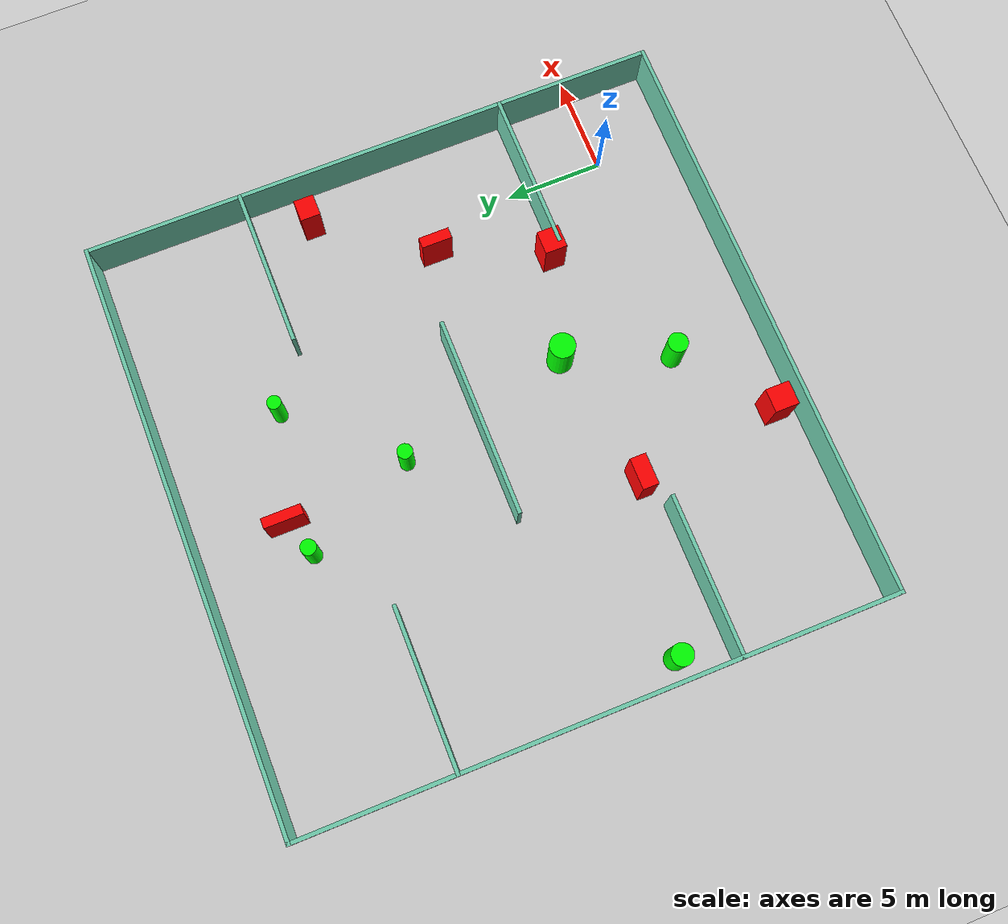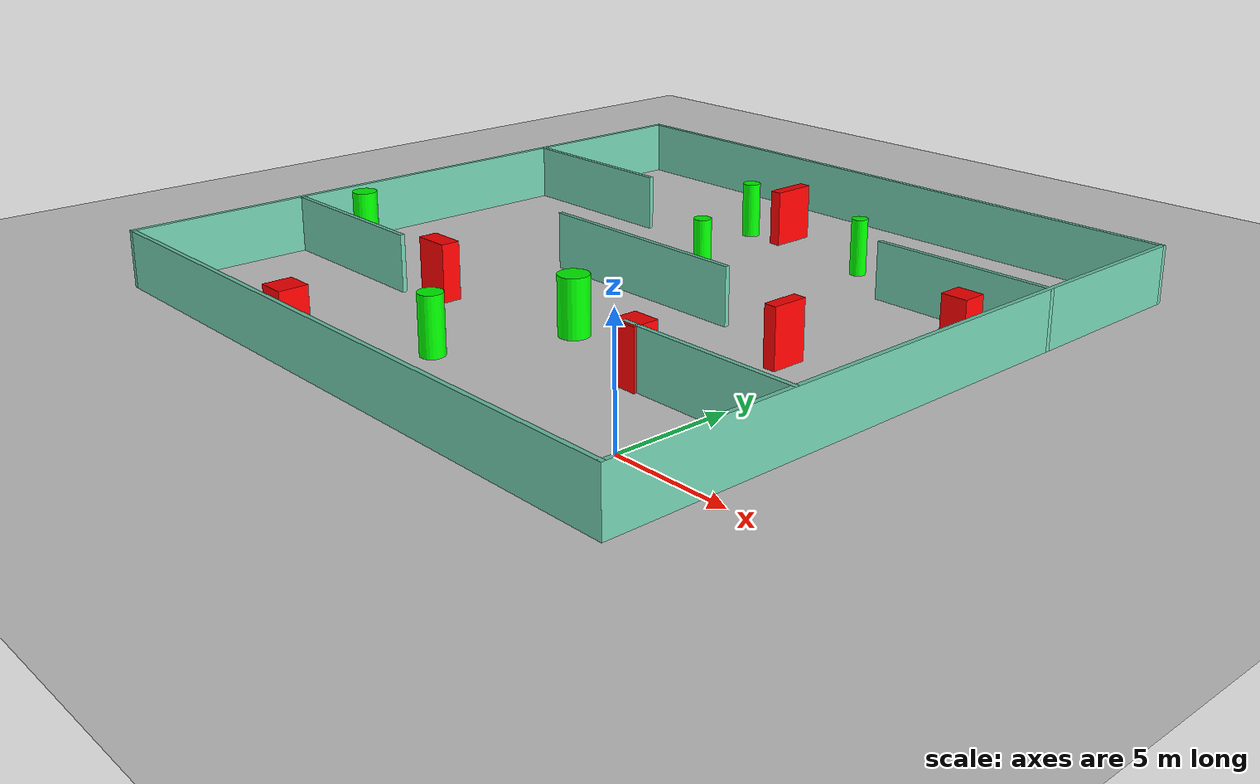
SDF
<sdf version="1.7">
 <world name="default">
  <light name="sun" type="directional">
   <pose>0 0 10 0 -0 0</pose>
   <diffuse>0.8 0.8 0.8 1</diffuse>
   <specular>0.2 0.2 0.2 1</specular>
   <attenuation>
    <range>1000</range>
    <constant>0.9</constant>
    <linear>0.01</linear>
    <quadratic>0.001</quadratic>
   </attenuation>
   <direction>-0.5 0.1 -0.9</direction>
   <spot><inner_angle>0</inner_angle><outer_angle>0</outer_angle><falloff>0</falloff></spot>
  </light>
  <model name="ground_plane">
   <static>1</static>
   <link name="link">
    <collision name="collision">
     <geometry><plane><normal>0 0 1</normal><size>100 100</size></plane></geometry>
     <surface>
      <contact><collide_bitmask>65535</collide_bitmask></contact>
      <friction><ode><mu>100</mu><mu2>50</mu2></ode></friction>
     </surface>
    </collision>
    <visual name="visual">
     <cast_shadows>0</cast_shadows>
     <geometry><plane><normal>0 0 1</normal><size>100 100</size></plane></geometry>
     <material>
      <script><uri>file://media/materials/scripts/gazebo.material</uri><name>Gazebo/Grey</name></script>
     </material>
    </visual>
   </link>
  </model>
  <gravity>0 0 -9.8</gravity>
  <magnetic_field>6e-06 2.3e-05 -4.2e-05</magnetic_field>
  <atmosphere type="adiabatic"/>
  <physics type="ode">
   <max_step_size>0.001</max_step_size>
   <real_time_factor>1</real_time_factor>
   <real_time_update_rate>1000</real_time_update_rate>
  </physics>
  <scene><ambient>0.4 0.4 0.4 1</ambient><background>0.7 0.7 0.7 1</background><shadows>1</shadows></scene>
  <spherical_coordinates>
   <surface_model>EARTH_WGS84</surface_model>
   <latitude_deg>0</latitude_deg>
   <longitude_deg>0</longitude_deg>
   <elevation>0</elevation>
   <heading_deg>0</heading_deg>
  </spherical_coordinates>
  <model name="my_base_walls">
   <link name="Wall_10">
    <collision name="Wall_10_Collision">
     <geometry><box><size>8.2 0.2 2.5</size></box></geometry>
     <pose>0 0 1.25 0 -0 0</pose>
    </collision>
    <visual name="Wall_10_Visual">
     <pose>0 0 1.25 0 -0 0</pose>
     <geometry><box><size>8.2 0.2 2.5</size></box></geometry>
     <material>
      <script><uri>file://media/materials/scripts/gazebo.material</uri><name>Gazebo/Grey</name></script>
      <ambient>0.435294 0.796078 0.67451 1</ambient>
     </material>
     <meta><layer>0</layer></meta>
    </visual>
    <pose>-11 -7 0 0 -0 0</pose>
   </link>
   <link name="Wall_12">
    <collision name="Wall_12_Collision">
     <geometry><box><size>8.2 0.2 2.5</size></box></geometry>
     <pose>0 0 1.25 0 -0 0</pose>
    </collision>
    <visual name="Wall_12_Visual">
     <pose>0 0 1.25 0 -0 0</pose>
     <geometry><box><size>8.2 0.2 2.5</size></box></geometry>
     <material>
      <script><uri>file://media/materials/scripts/gazebo.material</uri><name>Gazebo/Grey</name></script>
      <ambient>0.435294 0.796078 0.67451 1</ambient>
     </material>
     <meta><layer>0</layer></meta>
    </visual>
    <pose>-11 7 0 0 -0 0</pose>
   </link>
   <link name="Wall_14">
    <collision name="Wall_14_Collision">
     <geometry><box><size>8.2 0.2 2.5</size></box></geometry>
     <pose>0 0 1.25 0 -0 0</pose>
    </collision>
    <visual name="Wall_14_Visual">
     <pose>0 0 1.25 0 -0 0</pose>
     <geometry><box><size>8.2 0.2 2.5</size></box></geometry>
     <material>
      <script><uri>file://media/materials/scripts/gazebo.material</uri><name>Gazebo/Grey</name></script>
      <ambient>0.435294 0.796078 0.67451 1</ambient>
     </material>
     <meta><layer>0</layer></meta>
    </visual>
    <pose>11 7 0 0 -0 3.14159</pose>
   </link>
   <link name="Wall_16">
    <collision name="Wall_16_Collision">
     <geometry><box><size>10.2 0.2 2.5</size></box></geometry>
     <pose>0 0 1.25 0 -0 0</pose>
    </collision>
    <visual name="Wall_16_Visual">
     <pose>0 0 1.25 0 -0 0</pose>
     <geometry><box><size>10.2 0.2 2.5</size></box></geometry>
     <material>
      <script><uri>file://media/materials/scripts/gazebo.material</uri><name>Gazebo/Grey</name></script>
      <ambient>0.435294 0.796078 0.67451 1</ambient>
     </material>
     <meta><layer>0</layer></meta>
    </visual>
    <pose>0 0 0 0 -0 3.14159</pose>
   </link>
   <link name="Wall_2">
    <collision name="Wall_2_Collision">
     <geometry><box><size>30.2 0.2 2.5</size></box></geometry>
     <pose>0 0 1.25 0 -0 0</pose>
    </collision>
    <visual name="Wall_2_Visual">
     <pose>0 0 1.25 0 -0 0</pose>
     <geometry><box><size>30.2 0.2 2.5</size></box></geometry>
     <material>
      <script><uri>file://media/materials/scripts/gazebo.material</uri><name>Gazebo/Grey</name></script>
      <ambient>0.435294 0.796078 0.67451 1</ambient>
     </material>
     <meta><layer>0</layer></meta>
    </visual>
    <pose>0 -15 0 0 -0 3.14159</pose>
   </link>
   <link name="Wall_3">
    <collision name="Wall_3_Collision">
     <geometry><box><size>30.2 0.2 2.5</size></box></geometry>
     <pose>0 0 1.25 0 -0 0</pose>
    </collision>
    <visual name="Wall_3_Visual">
     <pose>0 0 1.25 0 -0 0</pose>
     <geometry><box><size>30.2 0.2 2.5</size></box></geometry>
     <material>
      <script><uri>file://media/materials/scripts/gazebo.material</uri><name>Gazebo/Grey</name></script>
      <ambient>0.435294 0.796078 0.67451 1</ambient>
     </material>
     <meta><layer>0</layer></meta>
    </visual>
    <pose>-15 0 0 0 -0 1.5708</pose>
   </link>
   <link name="Wall_4">
    <collision name="Wall_4_Collision">
     <geometry><box><size>30.2 0.2 2.5</size></box></geometry>
     <pose>0 0 1.25 0 -0 0</pose>
    </collision>
    <visual name="Wall_4_Visual">
     <pose>0 0 1.25 0 -0 0</pose>
     <geometry><box><size>30.2 0.2 2.5</size></box></geometry>
     <material>
      <script><uri>file://media/materials/scripts/gazebo.material</uri><name>Gazebo/Grey</name></script>
      <ambient>0.435294 0.796078 0.67451 1</ambient>
     </material>
     <meta><layer>0</layer></meta>
    </visual>
    <pose>0 15 0 0 -0 0</pose>
   </link>
   <link name="Wall_6">
    <collision name="Wall_6_Collision">
     <geometry><box><size>30.2 0.2 2.5</size></box></geometry>
     <pose>0 0 1.25 0 -0 0</pose>
    </collision>
    <visual name="Wall_6_Visual">
     <pose>0 0 1.25 0 -0 0</pose>
     <geometry><box><size>30.2 0.2 2.5</size></box></geometry>
     <material>
      <script><uri>file://media/materials/scripts/gazebo.material</uri><name>Gazebo/Grey</name></script>
      <ambient>0.435294 0.796078 0.67451 1</ambient>
     </material>
     <meta><layer>0</layer></meta>
    </visual>
    <pose>15 0 0 0 -0 1.5708</pose>
   </link>
   <link name="Wall_8">
    <collision name="Wall_8_Collision">
     <geometry><box><size>8.2 0.2 2.5</size></box></geometry>
     <pose>0 0 1.25 0 -0 0</pose>
    </collision>
    <visual name="Wall_8_Visual">
     <pose>0 0 1.25 0 -0 0</pose>
     <geometry><box><size>8.2 0.2 2.5</size></box></geometry>
     <material>
      <script><uri>file://media/materials/scripts/gazebo.material</uri><name>Gazebo/Grey</name></script>
      <ambient>0.435294 0.796078 0.67451 1</ambient>
     </material>
     <meta><layer>0</layer></meta>
    </visual>
    <pose>11 -7 0 0 -0 3.14159</pose>
   </link>
   <static>1</static>
   <pose>-11 11 0 0 -0 0</pose>
  </model>
  <model name="cylinder1">
   <static>1</static>
   <link name="link">
    <inertial>
     <mass>1</mass>
     <inertia><ixx>0.5</ixx><ixy>0</ixy><ixz>0</ixz><iyy>0.5</iyy><iyz>0</iyz><izz>1</izz></inertia>
    </inertial>
    <collision name="collision">
     <geometry><cylinder><radius>0.6551876863949972</radius><length>2.5</length></cylinder></geometry>
    </collision>
    <visual name="visual">
     <geometry><cylinder><radius>0.6551876863949972</radius><length>2.5</length></cylinder></geometry>
     <material>
      <ambient>0 1 0 1</ambient>
      <diffuse>0 1 0 1</diffuse>
      <specular>0.1 0.1 0.1 1</specular>
      <emissive>0 0 0 0</emissive>
     </material>
    </visual>
   </link>
   <pose>-9.197490238429921 5.9769123065697904 1.25 0 0 0</pose>
  </model>
  <model name="cylinder2">
   <static>1</static>
   <link name="link">
    <inertial>
     <mass>1</mass>
     <inertia><ixx>0.5</ixx><ixy>0</ixy><ixz>0</ixz><iyy>0.5</iyy><iyz>0</iyz><izz>1</izz></inertia>
    </inertial>
    <collision name="collision">
     <geometry><cylinder><radius>0.3982204344117101</radius><length>2.5</length></cylinder></geometry>
    </collision>
    <visual name="visual">
     <geometry><cylinder><radius>0.3982204344117101</radius><length>2.5</length></cylinder></geometry>
     <material>
      <ambient>0 1 0 1</ambient>
      <diffuse>0 1 0 1</diffuse>
      <specular>0.1 0.1 0.1 1</specular>
      <emissive>0 0 0 0</emissive>
     </material>
    </visual>
   </link>
   <pose>-13.951274209895228 20.75733006818472 1.25 0 0 0</pose>
  </model>
  <model name="cylinder3">
   <static>1</static>
   <link name="link">
    <inertial>
     <mass>1</mass>
     <inertia><ixx>0.5</ixx><ixy>0</ixy><ixz>0</ixz><iyy>0.5</iyy><iyz>0</iyz><izz>1</izz></inertia>
    </inertial>
    <collision name="collision">
     <geometry><cylinder><radius>0.3838655274183893</radius><length>2.5</length></cylinder></geometry>
    </collision>
    <visual name="visual">
     <geometry><cylinder><radius>0.3838655274183893</radius><length>2.5</length></cylinder></geometry>
     <material>
      <ambient>0 1 0 1</ambient>
      <diffuse>0 1 0 1</diffuse>
      <specular>0.1 0.1 0.1 1</specular>
      <emissive>0 0 0 0</emissive>
     </material>
    </visual>
   </link>
   <pose>-11.31121483498938 14.955452889172783 1.25 0 0 0</pose>
  </model>
  <model name="cylinder4">
   <static>1</static>
   <link name="link">
    <inertial>
     <mass>1</mass>
     <inertia><ixx>0.5</ixx><ixy>0</ixy><ixz>0</ixz><iyy>0.5</iyy><iyz>0</iyz><izz>1</izz></inertia>
    </inertial>
    <collision name="collision">
     <geometry><cylinder><radius>0.510416935171629</radius><length>2.5</length></cylinder></geometry>
    </collision>
    <visual name="visual">
     <geometry><cylinder><radius>0.510416935171629</radius><length>2.5</length></cylinder></geometry>
     <material>
      <ambient>0 1 0 1</ambient>
      <diffuse>0 1 0 1</diffuse>
      <specular>0.1 0.1 0.1 1</specular>
      <emissive>0 0 0 0</emissive>
     </material>
    </visual>
   </link>
   <pose>-11.116763748408152 0.702351067648161 1.25 0 0 0</pose>
  </model>
  <model name="cylinder5">
   <static>1</static>
   <link name="link">
    <inertial>
     <mass>1</mass>
     <inertia><ixx>0.5</ixx><ixy>0</ixy><ixz>0</ixz><iyy>0.5</iyy><iyz>0</iyz><izz>1</izz></inertia>
    </inertial>
    <collision name="collision">
     <geometry><cylinder><radius>0.552879701268838</radius><length>2.5</length></cylinder></geometry>
    </collision>
    <visual name="visual">
     <geometry><cylinder><radius>0.552879701268838</radius><length>2.5</length></cylinder></geometry>
     <material>
      <ambient>0 1 0 1</ambient>
      <diffuse>0 1 0 1</diffuse>
      <specular>0.1 0.1 0.1 1</specular>
      <emissive>0 0 0 0</emissive>
     </material>
    </visual>
   </link>
   <pose>-24.872223642354218 6.5826467417761325 1.25 0 0 0</pose>
  </model>
  <model name="cylinder6">
   <static>1</static>
   <link name="link">
    <inertial>
     <mass>1</mass>
     <inertia><ixx>0.5</ixx><ixy>0</ixy><ixz>0</ixz><iyy>0.5</iyy><iyz>0</iyz><izz>1</izz></inertia>
    </inertial>
    <collision name="collision">
     <geometry><cylinder><radius>0.3526081374212921</radius><length>2.5</length></cylinder></geometry>
    </collision>
    <visual name="visual">
     <geometry><cylinder><radius>0.3526081374212921</radius><length>2.5</length></cylinder></geometry>
     <material>
      <ambient>0 1 0 1</ambient>
      <diffuse>0 1 0 1</diffuse>
      <specular>0.1 0.1 0.1 1</specular>
      <emissive>0 0 0 0</emissive>
     </material>
    </visual>
   </link>
   <pose>-6.744781024720787 19.93294873279966 1.25 0 0 0</pose>
  </model>
  <model name="box1">
   <static>1</static>
   <link name="link">
    <inertial>
     <mass>1</mass>
     <inertia><ixx>0.083</ixx><ixy>0</ixy><ixz>0</ixz><iyy>0.083</iyy><iyz>0</iyz><izz>0.083</izz></inertia>
    </inertial>
    <collision name="collision">
     <geometry><box><size>1.196730004209241 1.1406529510247352 2.5</size></box></geometry>
    </collision>
    <visual name="visual">
     <geometry><box><size>1.196730004209241 1.1406529510247352 2.5</size></box></geometry>
     <material>
      <ambient>1 0 0 1</ambient>
      <diffuse>1 0 0 1</diffuse>
      <specular>0.1 0.1 0.1 1</specular>
      <emissive>0 0 0 0</emissive>
     </material>
    </visual>
    <sensor name="my_contact" type="contact">
     <contact><collision>box_collision</collision><topic>__default_topic__</topic></contact>
    </sensor>
   </link>
   <pose>-3.8822887976853906 4.339358650737623 1.25 0 0 0</pose>
  </model>
  <model name="box2">
   <static>1</static>
   <link name="link">
    <inertial>
     <mass>1</mass>
     <inertia><ixx>0.083</ixx><ixy>0</ixy><ixz>0</ixz><iyy>0.083</iyy><iyz>0</iyz><izz>0.083</izz></inertia>
    </inertial>
    <collision name="collision">
     <geometry><box><size>0.5143940608029792 1.9904897259120358 2.5</size></box></geometry>
    </collision>
    <visual name="visual">
     <geometry><box><size>0.5143940608029792 1.9904897259120358 2.5</size></box></geometry>
     <material>
      <ambient>1 0 0 1</ambient>
      <diffuse>1 0 0 1</diffuse>
      <specular>0.1 0.1 0.1 1</specular>
      <emissive>0 0 0 0</emissive>
     </material>
    </visual>
    <sensor name="my_contact" type="contact">
     <contact><collision>box_collision</collision><topic>__default_topic__</topic></contact>
    </sensor>
   </link>
   <pose>-12.117685803037531 21.40790330740151 1.25 0 0 0</pose>
  </model>
  <model name="box3">
   <static>1</static>
   <link name="link">
    <inertial>
     <mass>1</mass>
     <inertia><ixx>0.083</ixx><ixy>0</ixy><ixz>0</ixz><iyy>0.083</iyy><iyz>0</iyz><izz>0.083</izz></inertia>
    </inertial>
    <collision name="collision">
     <geometry><box><size>1.1225947307645487 1.0278087701255265 2.5</size></box></geometry>
    </collision>
    <visual name="visual">
     <geometry><box><size>1.1225947307645487 1.0278087701255265 2.5</size></box></geometry>
     <material>
      <ambient>1 0 0 1</ambient>
      <diffuse>1 0 0 1</diffuse>
      <specular>0.1 0.1 0.1 1</specular>
      <emissive>0 0 0 0</emissive>
     </material>
    </visual>
    <sensor name="my_contact" type="contact">
     <contact><collision>box_collision</collision><topic>__default_topic__</topic></contact>
    </sensor>
   </link>
   <pose>2.18695696931853 15.069029636581842 1.25 0 0 0</pose>
  </model>
  <model name="box4">
   <static>1</static>
   <link name="link">
    <inertial>
     <mass>1</mass>
     <inertia><ixx>0.083</ixx><ixy>0</ixy><ixz>0</ixz><iyy>0.083</iyy><iyz>0</iyz><izz>0.083</izz></inertia>
    </inertial>
    <collision name="collision">
     <geometry><box><size>0.5535735258955509 1.5702033259072905 2.5</size></box></geometry>
    </collision>
    <visual name="visual">
     <geometry><box><size>0.5535735258955509 1.5702033259072905 2.5</size></box></geometry>
     <material>
      <ambient>1 0 0 1</ambient>
      <diffuse>1 0 0 1</diffuse>
      <specular>0.1 0.1 0.1 1</specular>
      <emissive>0 0 0 0</emissive>
     </material>
    </visual>
    <sensor name="my_contact" type="contact">
     <contact><collision>box_collision</collision><topic>__default_topic__</topic></contact>
    </sensor>
   </link>
   <pose>-1.6824875608300047 9.692115904942167 1.25 0 0 0</pose>
  </model>
  <model name="box5">
   <static>1</static>
   <link name="link">
    <inertial>
     <mass>1</mass>
     <inertia><ixx>0.083</ixx><ixy>0</ixy><ixz>0</ixz><iyy>0.083</iyy><iyz>0</iyz><izz>0.083</izz></inertia>
    </inertial>
    <collision name="collision">
     <geometry><box><size>1.6002088552083769 0.8255057872391732 2.5</size></box></geometry>
    </collision>
    <visual name="visual">
     <geometry><box><size>1.6002088552083769 0.8255057872391732 2.5</size></box></geometry>
     <material>
      <ambient>1 0 0 1</ambient>
      <diffuse>1 0 0 1</diffuse>
      <specular>0.1 0.1 0.1 1</specular>
      <emissive>0 0 0 0</emissive>
     </material>
    </visual>
    <sensor name="my_contact" type="contact">
     <contact><collision>box_collision</collision><topic>__default_topic__</topic></contact>
    </sensor>
   </link>
   <pose>-16.391395529171042 4.784462529628658 1.25 0 0 0</pose>
  </model>
  <model name="box6">
   <static>1</static>
   <link name="link">
    <inertial>
     <mass>1</mass>
     <inertia><ixx>0.083</ixx><ixy>0</ixy><ixz>0</ixz><iyy>0.083</iyy><iyz>0</iyz><izz>0.083</izz></inertia>
    </inertial>
    <collision name="collision">
     <geometry><box><size>1.2093718236711928 1.2432034480673329 2.5</size></box></geometry>
    </collision>
    <visual name="visual">
     <geometry><box><size>1.2093718236711928 1.2432034480673329 2.5</size></box></geometry>
     <material>
      <ambient>1 0 0 1</ambient>
      <diffuse>1 0 0 1</diffuse>
      <specular>0.1 0.1 0.1 1</specular>
      <emissive>0 0 0 0</emissive>
     </material>
    </visual>
    <sensor name="my_contact" type="contact">
     <contact><collision>box_collision</collision><topic>__default_topic__</topic></contact>
    </sensor>
   </link>
   <pose>-15.458242402327521 -2.831842762172705 1.25 0 0 0</pose>
  </model>
 </world>
</sdf>
